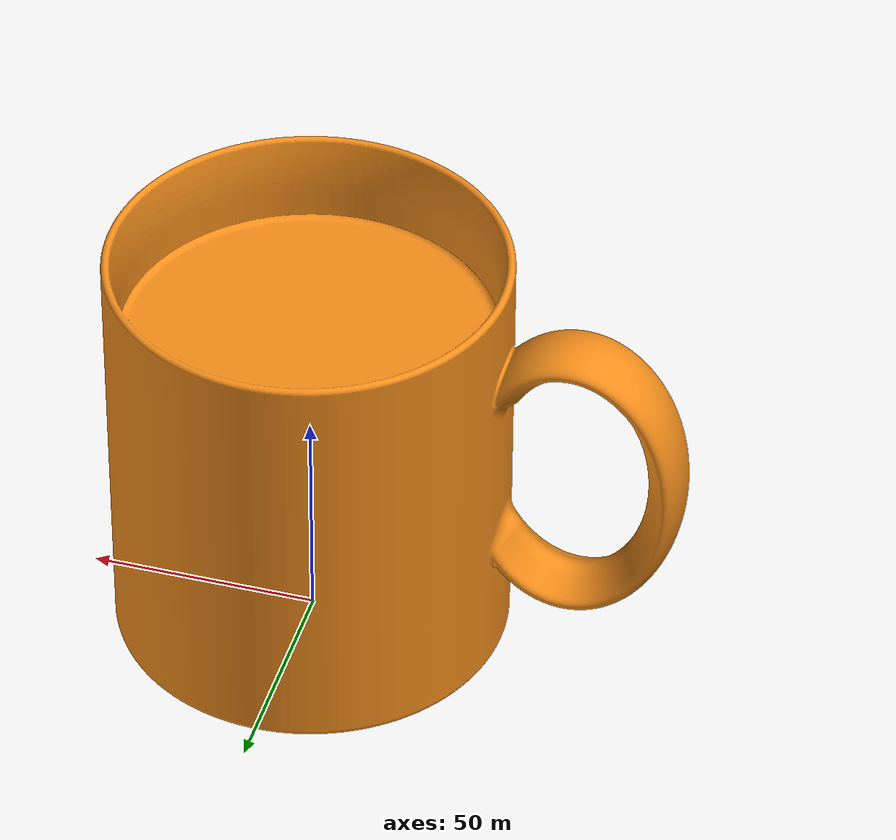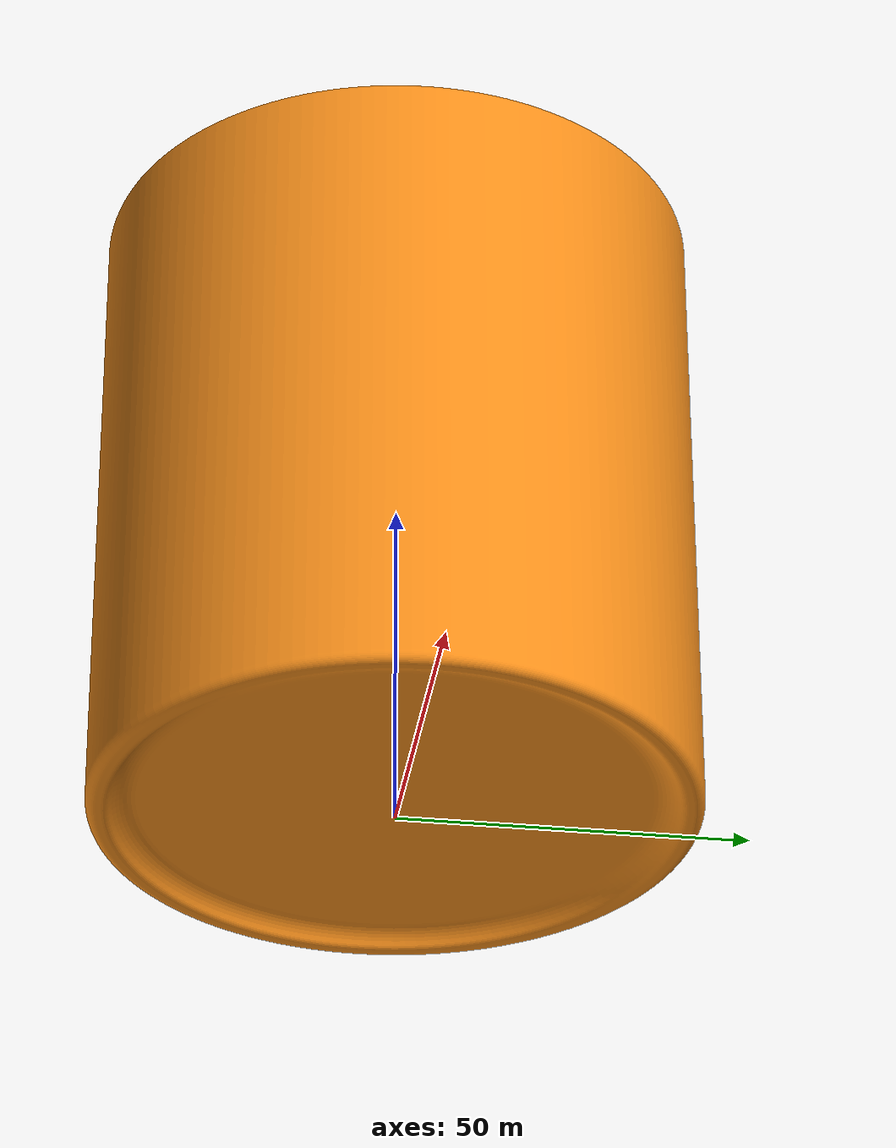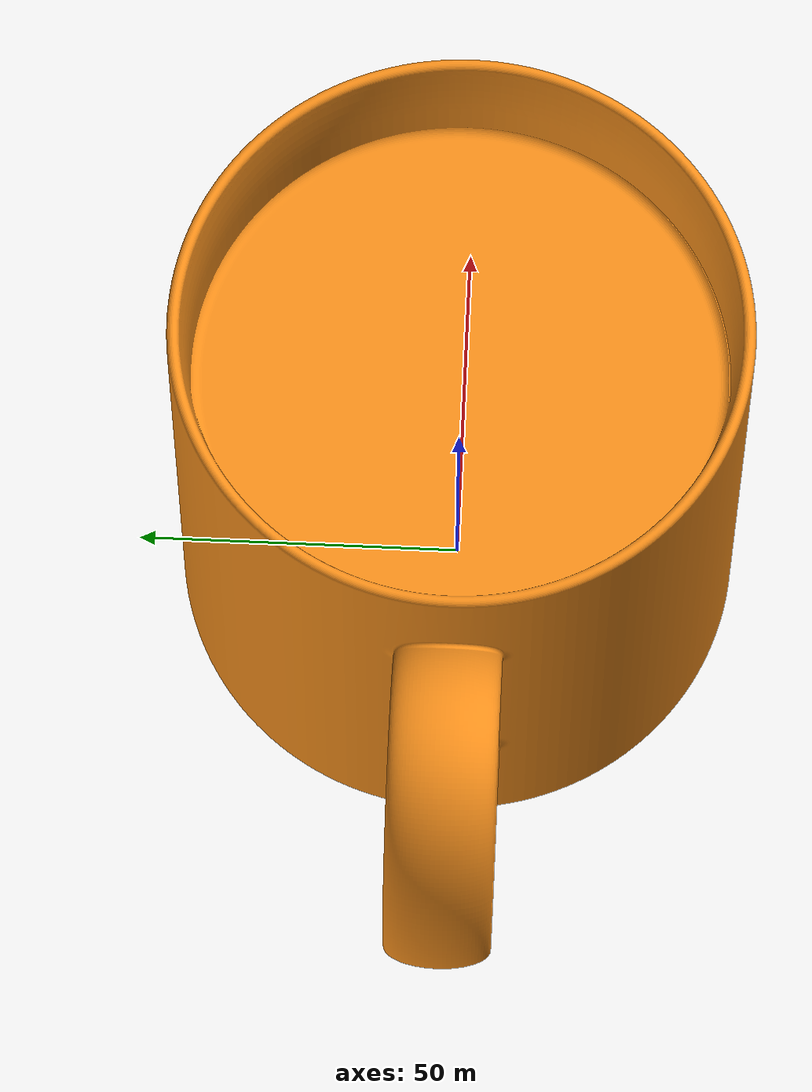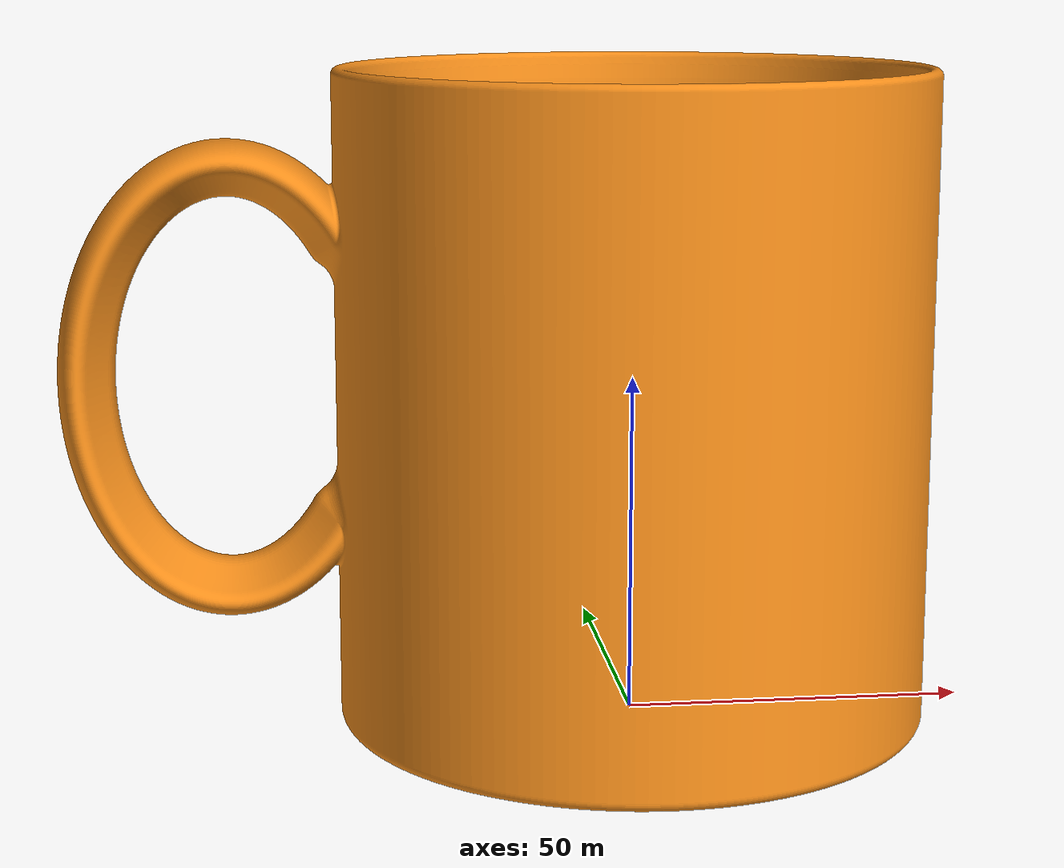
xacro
<?xml version="1.0"?>
<!-- Revolute-Revolute Manipulator -->
<robot name="irb120" xmlns:xacro="http://www.ros.org/wiki/xacro">

  <!-- Constants for robot dimensions -->
  <xacro:property name="PI" value="3.1415926535897931"/>
  #<xacro:property name="width" value="0.1" /> <!-- Square dimensions (widthxwidth) of beams -->
  #<xacro:property name="height1" value="2" /> <!-- Link 1 -->
  #<xacro:property name="height2" value="1" /> <!-- Link 2 -->
  #<xacro:property name="height3" value="1" /> <!-- Link 3 -->
  #<xacro:property name="camera_link" value="0.05" /> <!-- Size of square 'camera' box -->
  #<xacro:property name="axel_offset" value="0.05" /> <!-- Space btw top of beam and the each joint -->

  <!-- Import all Gazebo-customization elements, including Gazebo colors -->
  <xacro:include filename="$(find CoffeMug)/urdf/irb120.gazebo" />
  <!-- Import Rviz colors -->
  <xacro:include filename="$(find CoffeMug)/urdf/materials.xacro" />

  <!-- Used for fixing robot to Gazebo 'base_link' -->
   <link name="link7">
    <collision>
      <origin xyz="0 0 0" rpy="0 0 0"/>
      <geometry>
	<box size="0.1 0.1 0.1"/>
      </geometry>
    </collision>

    <visual>
      <origin xyz="0 0 0" rpy="0 0 0"/>
      <geometry>
	<!--box size="${width} ${width} ${height3}"/-->
	        <mesh filename="package://CoffeMug/CoffeeMug.stl"/>
      </geometry>
      <material name="orange"/>
    </visual>

    <inertial>
      <origin xyz="0 0 0" rpy="0 0 0"/>
      <mass value="1"/>
      <inertia
	  ixx="1.0" ixy="0.0" ixz="0.0"
	  iyy="1.0" iyz="0.0"
	  izz="1.0"/>
    </inertial>
  </link>

</robot>
